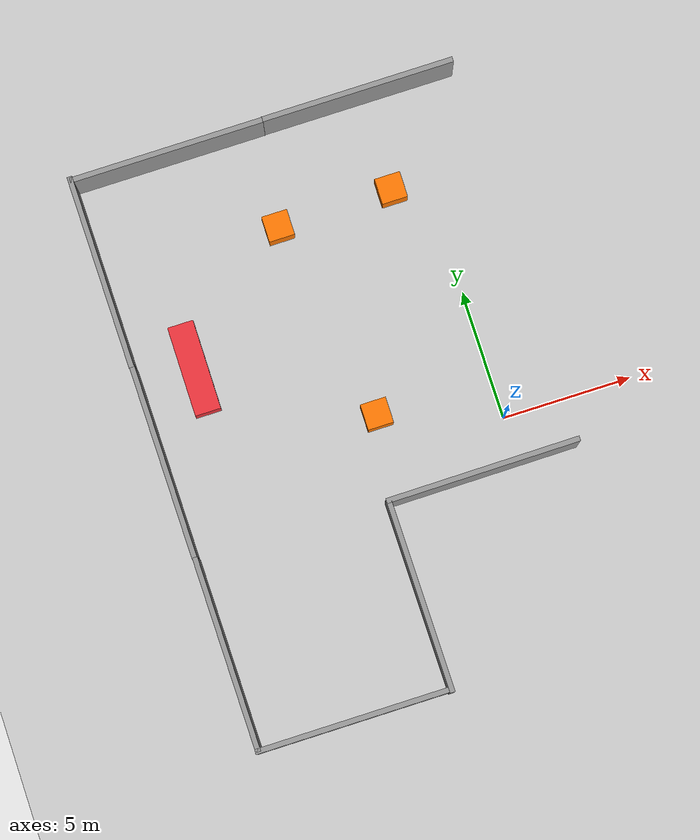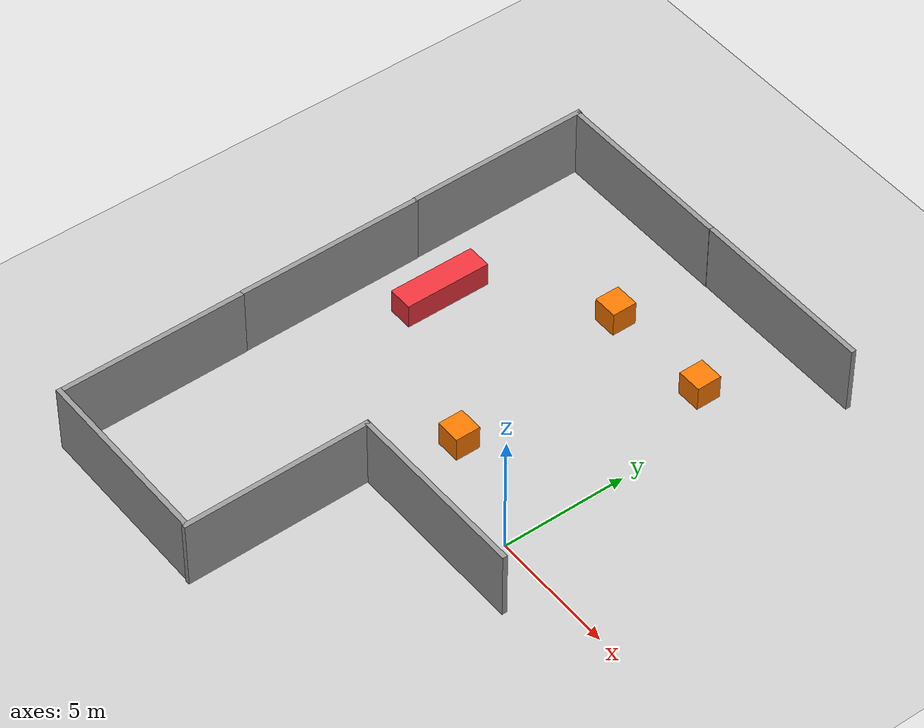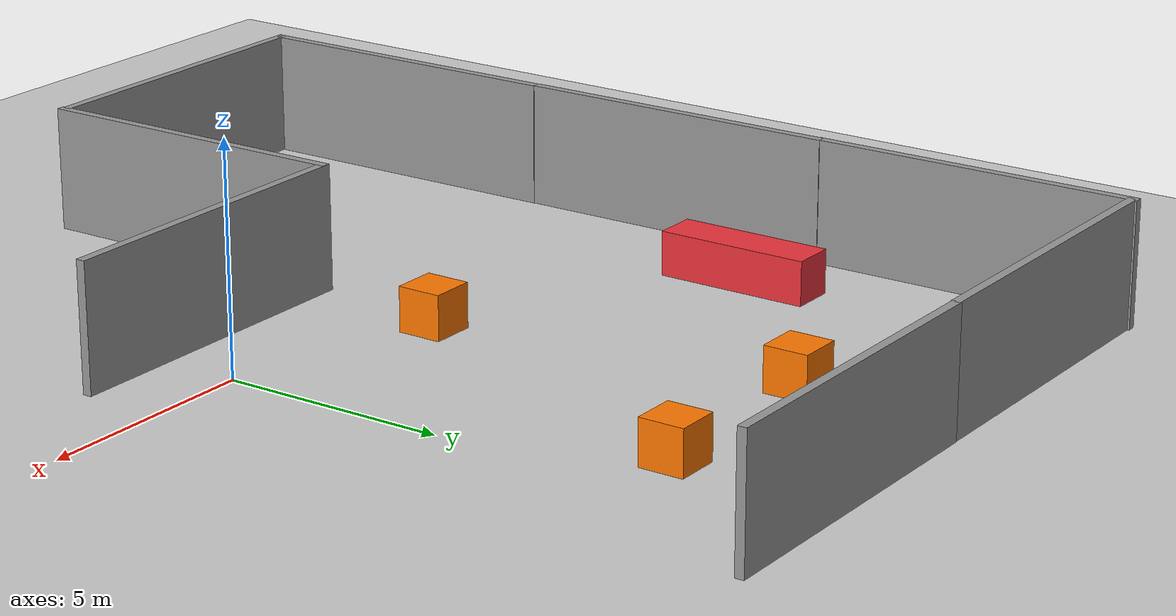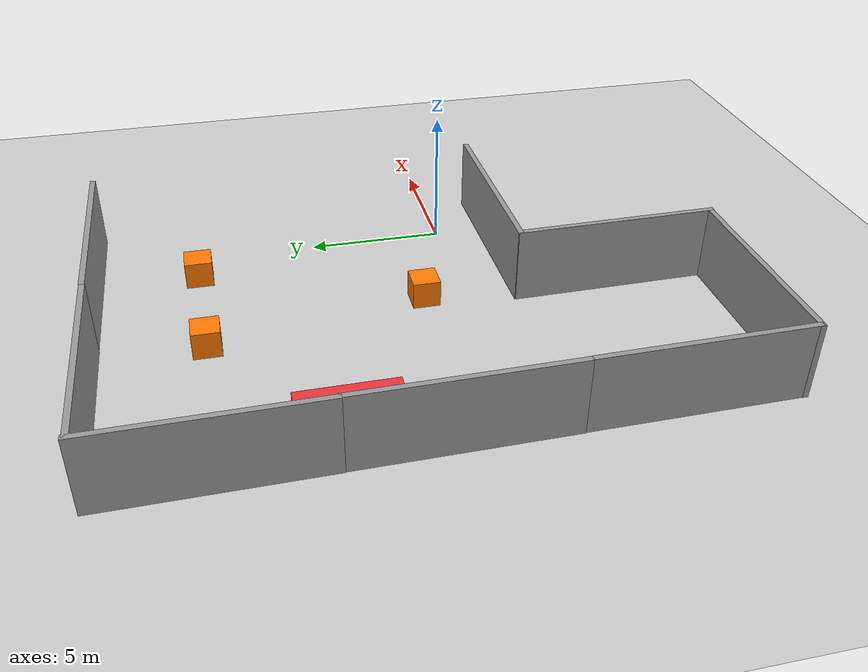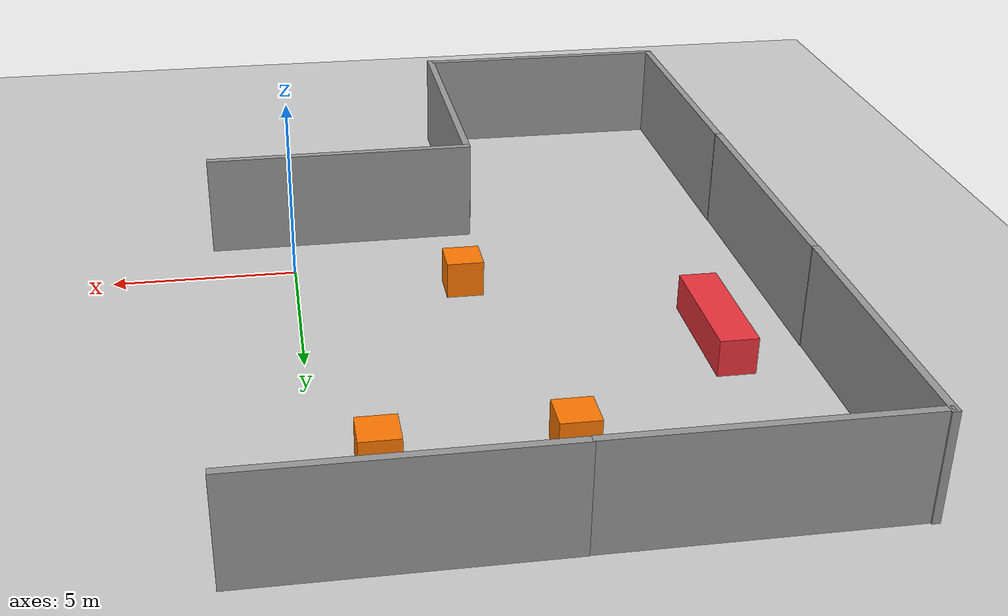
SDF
<sdf version="1.7">
 <world name="default">
  <model name="ground_plane">
   <static>1</static>
   <link name="link">
    <collision name="collision">
     <geometry><plane><normal>0 0 1</normal><size>100 100</size></plane></geometry>
     <surface><friction><ode><mu>100</mu><mu2>50</mu2></ode></friction></surface>
    </collision>
    <visual name="visual">
     <cast_shadows>0</cast_shadows>
     <geometry><plane><normal>0 0 1</normal><size>100 100</size></plane></geometry>
     <material>
      <script><uri>file://media/materials/scripts/gazebo.material</uri><name>Gazebo/Grey</name></script>
     </material>
    </visual>
   </link>
  </model>
  <model name="grey_wall">
   <static>1</static>
   <link name="link">
    <pose>0 0 1.4 0 -0 0</pose>
    <collision name="collision"><geometry><box><size>7.5 0.2 2.8</size></box></geometry></collision>
    <visual name="visual">
     <cast_shadows>0</cast_shadows>
     <geometry><box><size>7.5 0.2 2.8</size></box></geometry>
     <material>
      <script>
       <uri>model://grey_wall/materials/scripts</uri>
       <uri>model://grey_wall/materials/textures</uri>
       <name>vrc/grey_wall</name>
      </script>
     </material>
    </visual>
   </link>
   <pose>-9.03023 13.1296 0 0 -0 0</pose>
  </model>
  <model name="grey_wall_clone">
   <static>1</static>
   <link name="link">
    <pose>0 0 1.4 0 -0 0</pose>
    <collision name="collision"><geometry><box><size>7.5 0.2 2.8</size></box></geometry></collision>
    <visual name="visual">
     <cast_shadows>0</cast_shadows>
     <geometry><box><size>7.5 0.2 2.8</size></box></geometry>
     <material>
      <script>
       <uri>model://grey_wall/materials/scripts</uri>
       <uri>model://grey_wall/materials/textures</uri>
       <name>vrc/grey_wall</name>
      </script>
     </material>
    </visual>
   </link>
   <pose>-1.57984 13.1426 0 0 -0 0</pose>
  </model>
  <model name="grey_wall_clone_0">
   <static>1</static>
   <link name="link">
    <pose>0 0 1.4 0 -0 0</pose>
    <collision name="collision"><geometry><box><size>7.5 0.2 2.8</size></box></geometry></collision>
    <visual name="visual">
     <cast_shadows>0</cast_shadows>
     <geometry><box><size>7.5 0.2 2.8</size></box></geometry>
     <material>
      <script>
       <uri>model://grey_wall/materials/scripts</uri>
       <uri>model://grey_wall/materials/textures</uri>
       <name>vrc/grey_wall</name>
      </script>
     </material>
    </visual>
   </link>
   <pose>-12.721 9.52204 0 0 -0 1.58052</pose>
  </model>
  <model name="grey_wall_clone_0_clone">
   <static>1</static>
   <link name="link">
    <pose>0 0 1.4 0 -0 0</pose>
    <collision name="collision"><geometry><box><size>7.5 0.2 2.8</size></box></geometry></collision>
    <visual name="visual">
     <cast_shadows>0</cast_shadows>
     <geometry><box><size>7.5 0.2 2.8</size></box></geometry>
     <material>
      <script>
       <uri>model://grey_wall/materials/scripts</uri>
       <uri>model://grey_wall/materials/textures</uri>
       <name>vrc/grey_wall</name>
      </script>
     </material>
    </visual>
   </link>
   <pose>-12.632 2.10534 0 0 -0 1.58052</pose>
  </model>
  <model name="unit_box_0">
   <link name="link">
    <inertial>
     <mass>1</mass>
     <inertia>
      <ixx>0.166667</ixx>
      <ixy>0</ixy>
      <ixz>0</ixz>
      <iyy>0.166667</iyy>
      <iyz>0</iyz>
      <izz>0.166667</izz>
     </inertia>
    </inertial>
    <visual name="visual">
     <geometry><box><size>1 1 1</size></box></geometry>
     <material>
      <script><name>Gazebo/Grey</name><uri>file://media/materials/scripts/gazebo.material</uri></script>
      <shader type="pixel"><normal_map>__default__</normal_map></shader>
      <ambient>1 0.471 0 1</ambient>
      <diffuse>0.7 0.7 0.7 1</diffuse>
      <specular>0.01 0.01 0.01 1</specular>
      <emissive>0 0 0 1</emissive>
     </material>
    </visual>
    <collision name="collision">
     <geometry><box><size>1 1 1</size></box></geometry>
     <surface>
      <friction>
       <ode><mu>1</mu><mu2>1</mu2><fdir1>0 0 0</fdir1><slip1>0</slip1><slip2>0</slip2></ode>
       <torsional>
        <coefficient>1</coefficient>
        <patch_radius>0</patch_radius>
        <surface_radius>0</surface_radius>
        <use_patch_radius>1</use_patch_radius>
        <ode><slip>0</slip></ode>
       </torsional>
      </friction>
      <bounce><restitution_coefficient>0</restitution_coefficient><threshold>1e+06</threshold></bounce>
      <contact>
       <collide_without_contact>0</collide_without_contact>
       <collide_without_contact_bitmask>1</collide_without_contact_bitmask>
       <collide_bitmask>1</collide_bitmask>
       <ode>
        <soft_cfm>0</soft_cfm>
        <soft_erp>0.2</soft_erp>
        <kp>1e+13</kp>
        <kd>1</kd>
        <max_vel>0.01</max_vel>
        <min_depth>0</min_depth>
       </ode>
       <bullet>
        <split_impulse>1</split_impulse>
        <split_impulse_penetration_threshold>-0.01</split_impulse_penetration_threshold>
        <soft_cfm>0</soft_cfm>
        <soft_erp>0.2</soft_erp>
        <kp>1e+13</kp>
        <kd>1</kd>
       </bullet>
      </contact>
     </surface>
    </collision>
   </link>
   <static>0</static>
   <pose>-5.88935 9.42884 0.499995 0 1e-05 0</pose>
  </model>
  <model name="unit_box_0_clone">
   <link name="link">
    <inertial>
     <mass>1</mass>
     <inertia>
      <ixx>0.166667</ixx>
      <ixy>0</ixy>
      <ixz>0</ixz>
      <iyy>0.166667</iyy>
      <iyz>0</iyz>
      <izz>0.166667</izz>
     </inertia>
    </inertial>
    <visual name="visual">
     <geometry><box><size>1 1 1</size></box></geometry>
     <material>
      <script><name>Gazebo/Grey</name><uri>file://media/materials/scripts/gazebo.material</uri></script>
      <shader type="pixel"><normal_map>__default__</normal_map></shader>
      <ambient>1 0.471 0 1</ambient>
      <diffuse>0.7 0.7 0.7 1</diffuse>
      <specular>0.01 0.01 0.01 1</specular>
      <emissive>0 0 0 1</emissive>
     </material>
    </visual>
    <collision name="collision">
     <geometry><box><size>1 1 1</size></box></geometry>
     <surface>
      <friction>
       <ode><mu>1</mu><mu2>1</mu2><fdir1>0 0 0</fdir1><slip1>0</slip1><slip2>0</slip2></ode>
       <torsional>
        <coefficient>1</coefficient>
        <patch_radius>0</patch_radius>
        <surface_radius>0</surface_radius>
        <use_patch_radius>1</use_patch_radius>
        <ode><slip>0</slip></ode>
       </torsional>
      </friction>
      <bounce><restitution_coefficient>0</restitution_coefficient><threshold>1e+06</threshold></bounce>
      <contact>
       <collide_without_contact>0</collide_without_contact>
       <collide_without_contact_bitmask>1</collide_without_contact_bitmask>
       <collide_bitmask>1</collide_bitmask>
       <ode>
        <soft_cfm>0</soft_cfm>
        <soft_erp>0.2</soft_erp>
        <kp>1e+13</kp>
        <kd>1</kd>
        <max_vel>0.01</max_vel>
        <min_depth>0</min_depth>
       </ode>
       <bullet>
        <split_impulse>1</split_impulse>
        <split_impulse_penetration_threshold>-0.01</split_impulse_penetration_threshold>
        <soft_cfm>0</soft_cfm>
        <soft_erp>0.2</soft_erp>
        <kp>1e+13</kp>
        <kd>1</kd>
       </bullet>
      </contact>
     </surface>
    </collision>
   </link>
   <static>0</static>
   <pose>-1.40327 9.50155 0.499995 0 -1e-05 0</pose>
  </model>
  <model name="unit_box_0_clone_0">
   <link name="link">
    <inertial>
     <mass>1</mass>
     <inertia>
      <ixx>0.166667</ixx>
      <ixy>0</ixy>
      <ixz>0</ixz>
      <iyy>0.166667</iyy>
      <iyz>0</iyz>
      <izz>0.166667</izz>
     </inertia>
    </inertial>
    <visual name="visual">
     <geometry><box><size>1 1 1</size></box></geometry>
     <material>
      <script><name>Gazebo/Grey</name><uri>file://media/materials/scripts/gazebo.material</uri></script>
      <shader type="pixel"><normal_map>__default__</normal_map></shader>
      <ambient>1 0.471 0 1</ambient>
      <diffuse>0.7 0.7 0.7 1</diffuse>
      <specular>0.01 0.01 0.01 1</specular>
      <emissive>0 0 0 1</emissive>
     </material>
    </visual>
    <collision name="collision">
     <geometry><box><size>1 1 1</size></box></geometry>
     <surface>
      <friction>
       <ode><mu>1</mu><mu2>1</mu2><fdir1>0 0 0</fdir1><slip1>0</slip1><slip2>0</slip2></ode>
       <torsional>
        <coefficient>1</coefficient>
        <patch_radius>0</patch_radius>
        <surface_radius>0</surface_radius>
        <use_patch_radius>1</use_patch_radius>
        <ode><slip>0</slip></ode>
       </torsional>
      </friction>
      <bounce><restitution_coefficient>0</restitution_coefficient><threshold>1e+06</threshold></bounce>
      <contact>
       <collide_without_contact>0</collide_without_contact>
       <collide_without_contact_bitmask>1</collide_without_contact_bitmask>
       <collide_bitmask>1</collide_bitmask>
       <ode>
        <soft_cfm>0</soft_cfm>
        <soft_erp>0.2</soft_erp>
        <kp>1e+13</kp>
        <kd>1</kd>
        <max_vel>0.01</max_vel>
        <min_depth>0</min_depth>
       </ode>
       <bullet>
        <split_impulse>1</split_impulse>
        <split_impulse_penetration_threshold>-0.01</split_impulse_penetration_threshold>
        <soft_cfm>0</soft_cfm>
        <soft_erp>0.2</soft_erp>
        <kp>1e+13</kp>
        <kd>1</kd>
       </bullet>
      </contact>
     </surface>
    </collision>
   </link>
   <static>0</static>
   <pose>-4.51978 1.53973 0.499995 -1e-05 0 0</pose>
  </model>
  <model name="loading">
   <link name="link">
    <inertial>
     <mass>1</mass>
     <inertia>
      <ixx>0.166667</ixx>
      <ixy>0</ixy>
      <ixz>0</ixz>
      <iyy>0.166667</iyy>
      <iyz>0</iyz>
      <izz>0.166667</izz>
     </inertia>
    </inertial>
    <visual name="visual">
     <geometry><box><size>1 3.48173 1</size></box></geometry>
     <material>
      <script><name>Gazebo/Grey</name><uri>file://media/materials/scripts/gazebo.material</uri></script>
      <shader type="pixel"><normal_map>__default__</normal_map></shader>
      <ambient>0.929 0.2 0.231 1</ambient>
      <diffuse>0.7 0.7 0.7 1</diffuse>
      <specular>0.01 0.01 0.01 1</specular>
      <emissive>0 0 0 1</emissive>
     </material>
    </visual>
    <collision name="collision">
     <geometry><box><size>1 3.48173 1</size></box></geometry>
     <surface>
      <friction>
       <ode><mu>1</mu><mu2>1</mu2><fdir1>0 0 0</fdir1><slip1>0</slip1><slip2>0</slip2></ode>
       <torsional>
        <coefficient>1</coefficient>
        <patch_radius>0</patch_radius>
        <surface_radius>0</surface_radius>
        <use_patch_radius>1</use_patch_radius>
        <ode><slip>0</slip></ode>
       </torsional>
      </friction>
      <bounce><restitution_coefficient>0</restitution_coefficient><threshold>1e+06</threshold></bounce>
      <contact>
       <collide_without_contact>0</collide_without_contact>
       <collide_without_contact_bitmask>1</collide_without_contact_bitmask>
       <collide_bitmask>1</collide_bitmask>
       <ode>
        <soft_cfm>0</soft_cfm>
        <soft_erp>0.2</soft_erp>
        <kp>1e+13</kp>
        <kd>1</kd>
        <max_vel>0.01</max_vel>
        <min_depth>0</min_depth>
       </ode>
       <bullet>
        <split_impulse>1</split_impulse>
        <split_impulse_penetration_threshold>-0.01</split_impulse_penetration_threshold>
        <soft_cfm>0</soft_cfm>
        <soft_erp>0.2</soft_erp>
        <kp>1e+13</kp>
        <kd>1</kd>
       </bullet>
      </contact>
     </surface>
    </collision>
   </link>
   <static>0</static>
   <pose>-10.5177 5.25775 0.499622 -0.000217 0 0</pose>
  </model>
  <model name="grey_wall_clone_0_clone_clone_1">
   <static>1</static>
   <link name="link">
    <pose>0 0 1.4 0 -0 0</pose>
    <collision name="collision"><geometry><box><size>7.5 0.2 2.8</size></box></geometry></collision>
    <visual name="visual">
     <cast_shadows>0</cast_shadows>
     <geometry><box><size>7.5 0.2 2.8</size></box></geometry>
     <material>
      <script>
       <uri>model://grey_wall/materials/scripts</uri>
       <uri>model://grey_wall/materials/textures</uri>
       <name>vrc/grey_wall</name>
      </script>
     </material>
    </visual>
   </link>
   <pose>-12.5436 -5.3777 0 0 -0 1.58052</pose>
  </model>
  <model name="grey_wall_clone_0_clone_clone_2">
   <static>1</static>
   <link name="link">
    <pose>0 0 1.4 0 -0 0</pose>
    <collision name="collision"><geometry><box><size>7.5 0.2 2.8</size></box></geometry></collision>
    <visual name="visual">
     <cast_shadows>0</cast_shadows>
     <geometry><box><size>7.5 0.2 2.8</size></box></geometry>
     <material>
      <script>
       <uri>model://grey_wall/materials/scripts</uri>
       <uri>model://grey_wall/materials/textures</uri>
       <name>vrc/grey_wall</name>
      </script>
     </material>
    </visual>
   </link>
   <pose>-5.10804 -5.48842 0 0 -0 1.58052</pose>
  </model>
  <model name="grey_wall_clone_0_clone_clone_3">
   <static>1</static>
   <link name="link">
    <pose>0 0 1.4 0 -0 0</pose>
    <collision name="collision"><geometry><box><size>7.5 0.2 2.8</size></box></geometry></collision>
    <visual name="visual">
     <cast_shadows>0</cast_shadows>
     <geometry><box><size>7.5 0.2 2.8</size></box></geometry>
     <material>
      <script>
       <uri>model://grey_wall/materials/scripts</uri>
       <uri>model://grey_wall/materials/textures</uri>
       <name>vrc/grey_wall</name>
      </script>
     </material>
    </visual>
   </link>
   <pose>-1.48631 -1.79734 0 0 -0 0.004166</pose>
  </model>
  <model name="grey_wall_clone_0_clone_clone_4">
   <static>1</static>
   <link name="link">
    <pose>0 0 1.4 0 -0 0</pose>
    <collision name="collision"><geometry><box><size>7.5 0.2 2.8</size></box></geometry></collision>
    <visual name="visual">
     <cast_shadows>0</cast_shadows>
     <geometry><box><size>7.5 0.2 2.8</size></box></geometry>
     <material>
      <script>
       <uri>model://grey_wall/materials/scripts</uri>
       <uri>model://grey_wall/materials/textures</uri>
       <name>vrc/grey_wall</name>
      </script>
     </material>
    </visual>
   </link>
   <pose>-8.86743 -9.10112 0 0 0 -0.000359</pose>
  </model>
 </world>
</sdf>
